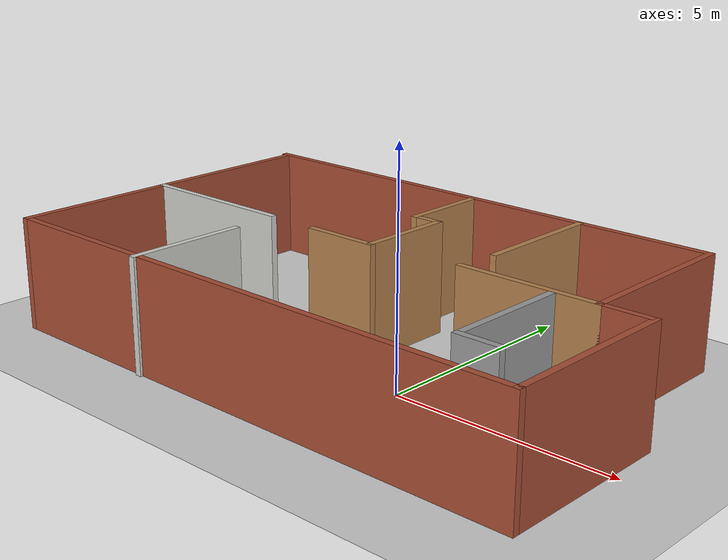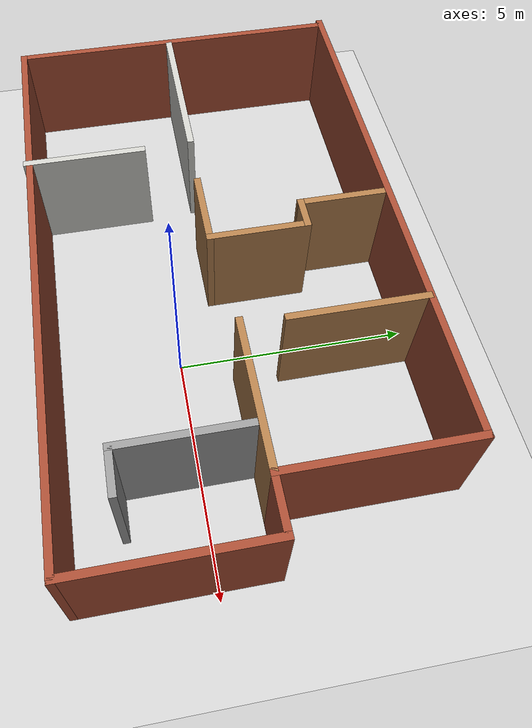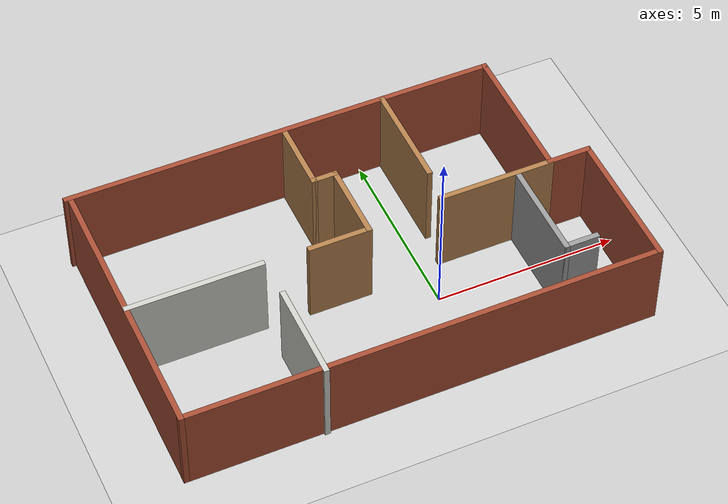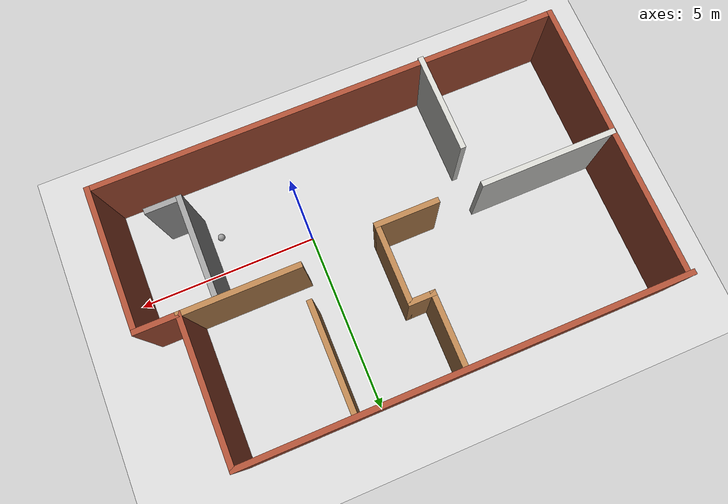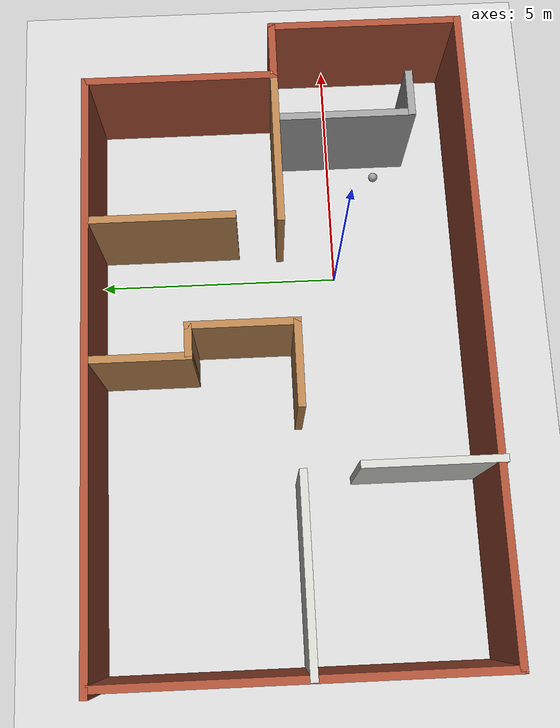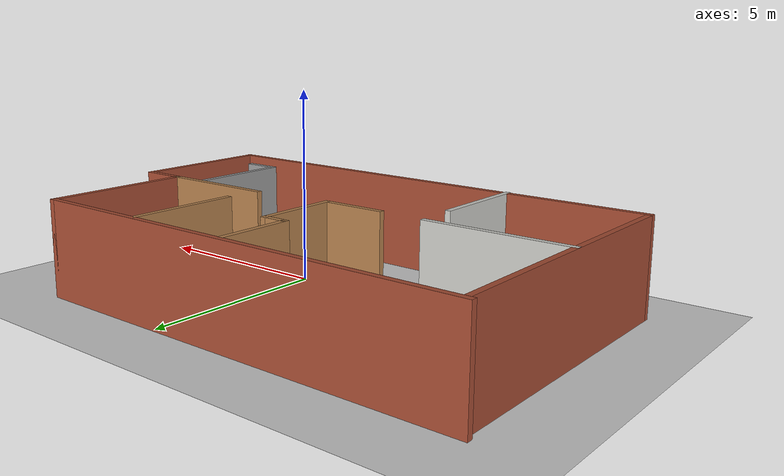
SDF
<sdf version="1.6">
 <world name="default">
  <plugin name="greeting" filename="libgreeting.so"/>
  <light name="sun" type="directional">
   <pose>0 0 10 0 -0 0</pose>
   <diffuse>0.8 0.8 0.8 1</diffuse>
   <specular>0.2 0.2 0.2 1</specular>
   <attenuation>
    <range>1000</range>
    <constant>0.9</constant>
    <linear>0.01</linear>
    <quadratic>0.001</quadratic>
   </attenuation>
   <direction>-0.5 0.1 -0.9</direction>
  </light>
  <model name="ground_plane">
   <static>1</static>
   <link name="link">
    <collision name="collision">
     <geometry><plane><normal>0 0 1</normal><size>100 100</size></plane></geometry>
     <surface><friction><ode><mu>100</mu><mu2>50</mu2></ode></friction></surface>
    </collision>
    <visual name="visual">
     <cast_shadows>0</cast_shadows>
     <geometry><plane><normal>0 0 1</normal><size>100 100</size></plane></geometry>
     <material>
      <script><uri>file://media/materials/scripts/gazebo.material</uri><name>Gazebo/Grey</name></script>
     </material>
    </visual>
   </link>
  </model>
  <gravity>0 0 -9.8</gravity>
  <magnetic_field>6e-06 2.3e-05 -4.2e-05</magnetic_field>
  <atmosphere type="adiabatic"/>
  <physics name="default_physics" default="0" type="ode">
   <max_step_size>0.001</max_step_size>
   <real_time_factor>1</real_time_factor>
   <real_time_update_rate>1000</real_time_update_rate>
  </physics>
  <scene><ambient>0.4 0.4 0.4 1</ambient><background>0.7 0.7 0.7 1</background><shadows>1</shadows></scene>
  <spherical_coordinates>
   <surface_model>EARTH_WGS84</surface_model>
   <latitude_deg>0</latitude_deg>
   <longitude_deg>0</longitude_deg>
   <elevation>0</elevation>
   <heading_deg>0</heading_deg>
  </spherical_coordinates>
  <model name="my_ball_0">
   <link name="link_0">
    <inertial>
     <mass>1</mass>
     <inertia><ixx>0.1</ixx><ixy>0</ixy><ixz>0</ixz><iyy>0.1</iyy><iyz>0</iyz><izz>0.1</izz></inertia>
    </inertial>
    <visual name="visual">
     <geometry><sphere><radius>0.1</radius></sphere></geometry>
     <material>
      <lighting>1</lighting>
      <script><uri>file://media/materials/scripts/gazebo.material</uri><name>Gazebo/Grey</name></script>
      <ambient>1 1 1 1</ambient>
      <diffuse>1 1 1 1</diffuse>
      <specular>1 1 1 1</specular>
      <emissive>1 1 1 1</emissive>
      <shader type="vertex"><normal_map>__default__</normal_map></shader>
     </material>
    </visual>
    <collision name="collision">
     <geometry><sphere><radius>0.1</radius></sphere></geometry>
     <surface>
      <friction>
       <ode><mu>1</mu><mu2>1</mu2><fdir1>0 0 0</fdir1><slip1>0</slip1><slip2>0</slip2></ode>
       <torsional>
        <coefficient>1</coefficient>
        <patch_radius>0</patch_radius>
        <surface_radius>0</surface_radius>
        <use_patch_radius>1</use_patch_radius>
        <ode><slip>0</slip></ode>
       </torsional>
      </friction>
      <bounce><restitution_coefficient>0</restitution_coefficient><threshold>1e+06</threshold></bounce>
      <contact>
       <collide_without_contact>0</collide_without_contact>
       <collide_without_contact_bitmask>1</collide_without_contact_bitmask>
       <collide_bitmask>1</collide_bitmask>
       <ode>
        <soft_cfm>0</soft_cfm>
        <soft_erp>0.2</soft_erp>
        <kp>1e+13</kp>
        <kd>1</kd>
        <max_vel>0.01</max_vel>
        <min_depth>0</min_depth>
       </ode>
       <bullet>
        <split_impulse>1</split_impulse>
        <split_impulse_penetration_threshold>-0.01</split_impulse_penetration_threshold>
        <soft_cfm>0</soft_cfm>
        <soft_erp>0.2</soft_erp>
        <kp>1e+13</kp>
        <kd>1</kd>
       </bullet>
      </contact>
     </surface>
    </collision>
   </link>
   <static>0</static>
   <pose>2.34236 -1.00198 0.1 0 -0 0</pose>
  </model>
  <model name="building_0">
   <pose>-1.71906 1.13642 0 0 -0 0</pose>
   <link name="Wall_0">
    <collision name="Wall_0_Collision">
     <geometry><box><size>12 0.15 2.5</size></box></geometry>
     <pose>0 0 1.25 0 -0 0</pose>
    </collision>
    <visual name="Wall_0_Visual">
     <pose>0 0 1.25 0 -0 0</pose>
     <geometry><box><size>12 0.15 2.5</size></box></geometry>
     <material>
      <script><uri>file://media/materials/scripts/gazebo.material</uri><name>Gazebo/Bricks</name></script>
      <ambient>1 1 1 1</ambient>
     </material>
     <meta><layer>0</layer></meta>
    </visual>
    <pose>-0.55 3.87906 0 0 -0 0</pose>
   </link>
   <link name="Wall_1">
    <collision name="Wall_1_Collision">
     <geometry><box><size>4 0.15 2.5</size></box></geometry>
     <pose>0 0 1.25 0 -0 0</pose>
    </collision>
    <visual name="Wall_1_Visual">
     <pose>0 0 1.25 0 -0 0</pose>
     <geometry><box><size>4 0.15 2.5</size></box></geometry>
     <material>
      <script><uri>file://media/materials/scripts/gazebo.material</uri><name>Gazebo/Bricks</name></script>
      <ambient>1 1 1 1</ambient>
     </material>
     <meta><layer>0</layer></meta>
    </visual>
    <pose>5.375 1.95406 0 0 0 -1.5708</pose>
   </link>
   <link name="Wall_10">
    <collision name="Wall_10_Collision">
     <geometry><box><size>1.75 0.15 2.5</size></box></geometry>
     <pose>0 0 1.25 0 -0 0</pose>
    </collision>
    <visual name="Wall_10_Visual">
     <pose>0 0 1.25 0 -0 0</pose>
     <geometry><box><size>1.75 0.15 2.5</size></box></geometry>
     <material>
      <script><uri>file://media/materials/scripts/gazebo.material</uri><name>Gazebo/Wood</name></script>
      <ambient>1 1 1 1</ambient>
     </material>
     <meta><layer>0</layer></meta>
    </visual>
    <pose>-0.661042 -0.18659 0 0 -0 3.14159</pose>
   </link>
   <link name="Wall_12">
    <collision name="Wall_12_Collision">
     <geometry><box><size>3.75 0.15 2.5</size></box></geometry>
     <pose>0 0 1.25 0 -0 0</pose>
    </collision>
    <visual name="Wall_12_Visual">
     <pose>0 0 1.25 0 -0 0</pose>
     <geometry><box><size>3.75 0.15 2.5</size></box></geometry>
     <material>
      <script><uri>file://media/materials/scripts/gazebo.material</uri><name>Gazebo/CeilingTiled</name></script>
      <ambient>1 1 1 1</ambient>
     </material>
     <meta><layer>0</layer></meta>
    </visual>
    <pose>-4.55935 -0.145663 0 0 -0 0</pose>
   </link>
   <link name="Wall_14">
    <collision name="Wall_14_Collision">
     <geometry><box><size>2.75 0.15 2.5</size></box></geometry>
     <pose>0 0 1.25 0 -0 0</pose>
    </collision>
    <visual name="Wall_14_Visual">
     <pose>0 0 1.25 0 -0 0</pose>
     <geometry><box><size>2.75 0.15 2.5</size></box></geometry>
     <material>
      <script><uri>file://media/materials/scripts/gazebo.material</uri><name>Gazebo/CeilingTiled</name></script>
      <ambient>1 1 1 1</ambient>
     </material>
     <meta><layer>0</layer></meta>
    </visual>
    <pose>-2.65845 -2.57906 0 0 0 -1.5708</pose>
   </link>
   <link name="Wall_16">
    <collision name="Wall_16_Collision">
     <geometry><box><size>2.75 0.15 2.5</size></box></geometry>
     <pose>0 0 1.25 0 -0 0</pose>
    </collision>
    <visual name="Wall_16_Visual">
     <pose>0 0 1.25 0 -0 0</pose>
     <geometry><box><size>2.75 0.15 2.5</size></box></geometry>
     <material>
      <script><uri>file://media/materials/scripts/gazebo.material</uri><name>Gazebo/Grey</name></script>
      <ambient>1 1 1 1</ambient>
     </material>
     <meta><layer>0</layer></meta>
    </visual>
    <pose>4.41952 -1.42253 0 0 0 -1.5708</pose>
   </link>
   <link name="Wall_17">
    <collision name="Wall_17_Collision">
     <geometry><box><size>1 0.15 2.5</size></box></geometry>
     <pose>0 0 1.25 0 -0 0</pose>
    </collision>
    <visual name="Wall_17_Visual">
     <pose>0 0 1.25 0 -0 0</pose>
     <geometry><box><size>1 0.15 2.5</size></box></geometry>
     <material>
      <script><uri>file://media/materials/scripts/gazebo.material</uri><name>Gazebo/Grey</name></script>
      <ambient>1 1 1 1</ambient>
     </material>
     <meta><layer>0</layer></meta>
    </visual>
    <pose>4.84452 -2.72253 0 0 -0 0</pose>
   </link>
   <link name="Wall_2">
    <collision name="Wall_2_Collision">
     <geometry><box><size>1.25 0.15 2.5</size></box></geometry>
     <pose>0 0 1.25 0 -0 0</pose>
    </collision>
    <visual name="Wall_2_Visual">
     <pose>0 0 1.25 0 -0 0</pose>
     <geometry><box><size>1.25 0.15 2.5</size></box></geometry>
     <material>
      <script><uri>file://media/materials/scripts/gazebo.material</uri><name>Gazebo/Bricks</name></script>
      <ambient>1 1 1 1</ambient>
     </material>
     <meta><layer>0</layer></meta>
    </visual>
    <pose>5.925 0.029063 0 0 -0 0</pose>
   </link>
   <link name="Wall_20">
    <collision name="Wall_20_Collision">
     <geometry><box><size>3.25 0.15 2.5</size></box></geometry>
     <pose>0 0 1.25 0 -0 0</pose>
    </collision>
    <visual name="Wall_20_Visual">
     <pose>0 0 1.25 0 -0 0</pose>
     <geometry><box><size>3.25 0.15 2.5</size></box></geometry>
     <material>
      <script><uri>file://media/materials/scripts/gazebo.material</uri><name>Gazebo/Wood</name></script>
      <ambient>1 1 1 1</ambient>
     </material>
     <meta><layer>0</layer></meta>
    </visual>
    <pose>3.825 0.029063 0 0 -0 3.14159</pose>
   </link>
   <link name="Wall_22">
    <collision name="Wall_22_Collision">
     <geometry><box><size>3 0.15 2.5</size></box></geometry>
     <pose>0 0 1.25 0 -0 0</pose>
    </collision>
    <visual name="Wall_22_Visual">
     <pose>0 0 1.25 0 -0 0</pose>
     <geometry><box><size>3 0.15 2.5</size></box></geometry>
     <material>
      <script><uri>file://media/materials/scripts/gazebo.material</uri><name>Gazebo/Wood</name></script>
      <ambient>1 1 1 1</ambient>
     </material>
     <meta><layer>0</layer></meta>
    </visual>
    <pose>2.36089 2.4078 0 0 0 -1.5708</pose>
   </link>
   <link name="Wall_3">
    <collision name="Wall_3_Collision">
     <geometry><box><size>4 0.15 2.5</size></box></geometry>
     <pose>0 0 1.25 0 -0 0</pose>
    </collision>
    <visual name="Wall_3_Visual">
     <pose>0 0 1.25 0 -0 0</pose>
     <geometry><box><size>4 0.15 2.5</size></box></geometry>
     <material>
      <script><uri>file://media/materials/scripts/gazebo.material</uri><name>Gazebo/Bricks</name></script>
      <ambient>1 1 1 1</ambient>
     </material>
     <meta><layer>0</layer></meta>
    </visual>
    <pose>6.475 -1.89594 0 0 0 -1.5708</pose>
   </link>
   <link name="Wall_4">
    <collision name="Wall_4_Collision">
     <geometry><box><size>13 0.15 2.5</size></box></geometry>
     <pose>0 0 1.25 0 -0 0</pose>
    </collision>
    <visual name="Wall_4_Visual">
     <pose>0 0 1.25 0 -0 0</pose>
     <geometry><box><size>13 0.15 2.5</size></box></geometry>
     <material>
      <script><uri>file://media/materials/scripts/gazebo.material</uri><name>Gazebo/Bricks</name></script>
      <ambient>1 1 1 1</ambient>
     </material>
     <meta><layer>0</layer></meta>
    </visual>
    <pose>0.05 -3.82094 0 0 -0 3.14159</pose>
   </link>
   <link name="Wall_5">
    <collision name="Wall_5_Collision">
     <geometry><box><size>7.75 0.15 2.5</size></box></geometry>
     <pose>0 0 1.25 0 -0 0</pose>
    </collision>
    <visual name="Wall_5_Visual">
     <pose>0 0 1.25 0 -0 0</pose>
     <geometry><box><size>7.75 0.15 2.5</size></box></geometry>
     <material>
      <script><uri>file://media/materials/scripts/gazebo.material</uri><name>Gazebo/Bricks</name></script>
      <ambient>1 1 1 1</ambient>
     </material>
     <meta><layer>0</layer></meta>
    </visual>
    <pose>-6.375 -0.020937 0 0 -0 1.5708</pose>
   </link>
   <link name="Wall_7">
    <collision name="Wall_7_Collision">
     <geometry><box><size>2 0.15 2.5</size></box></geometry>
     <pose>0 0 1.25 0 -0 0</pose>
    </collision>
    <visual name="Wall_7_Visual">
     <pose>0 0 1.25 0 -0 0</pose>
     <geometry><box><size>2 0.15 2.5</size></box></geometry>
     <material>
      <script><uri>file://media/materials/scripts/gazebo.material</uri><name>Gazebo/Wood</name></script>
      <ambient>1 1 1 1</ambient>
     </material>
     <meta><layer>0</layer></meta>
    </visual>
    <pose>-0.461042 2.83841 0 0 0 -1.5708</pose>
   </link>
   <link name="Wall_8">
    <collision name="Wall_8_Collision">
     <geometry><box><size>0.75 0.15 2.5</size></box></geometry>
     <pose>0 0 1.25 0 -0 0</pose>
    </collision>
    <visual name="Wall_8_Visual">
     <pose>0 0 1.25 0 -0 0</pose>
     <geometry><box><size>0.75 0.15 2.5</size></box></geometry>
     <material>
      <script><uri>file://media/materials/scripts/gazebo.material</uri><name>Gazebo/Wood</name></script>
      <ambient>1 1 1 1</ambient>
     </material>
     <meta><layer>0</layer></meta>
    </visual>
    <pose>-0.161042 1.91341 0 0 -0 0</pose>
   </link>
   <link name="Wall_9">
    <collision name="Wall_9_Collision">
     <geometry><box><size>2.25 0.15 2.5</size></box></geometry>
     <pose>0 0 1.25 0 -0 0</pose>
    </collision>
    <visual name="Wall_9_Visual">
     <pose>0 0 1.25 0 -0 0</pose>
     <geometry><box><size>2.25 0.15 2.5</size></box></geometry>
     <material>
      <script><uri>file://media/materials/scripts/gazebo.material</uri><name>Gazebo/Wood</name></script>
      <ambient>1 1 1 1</ambient>
     </material>
     <meta><layer>0</layer></meta>
    </visual>
    <pose>0.138958 0.86341 0 0 0 -1.5708</pose>
   </link>
   <static>1</static>
  </model>
 </world>
</sdf>
